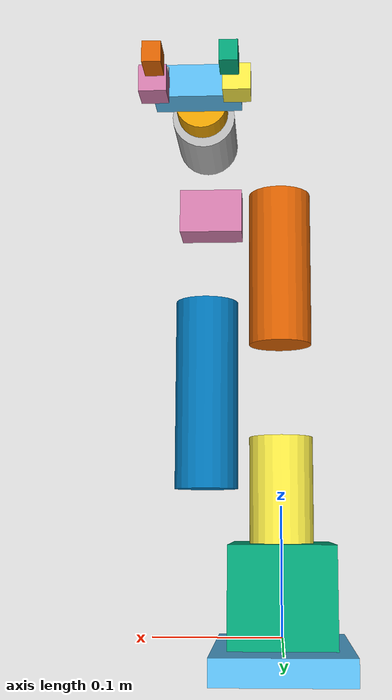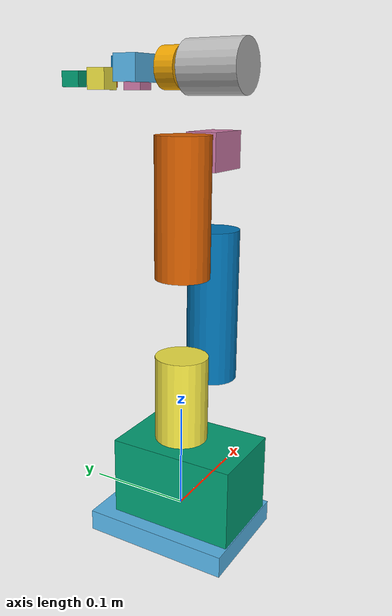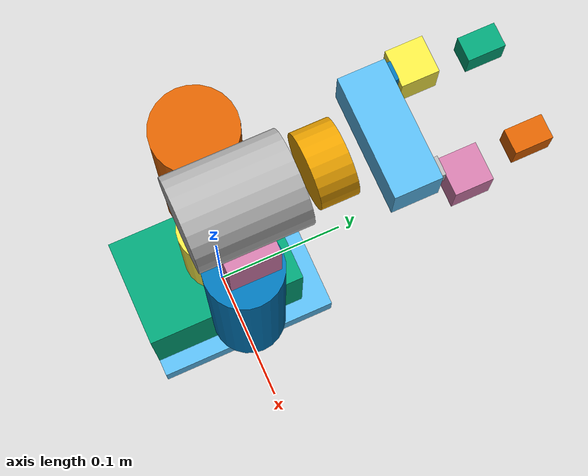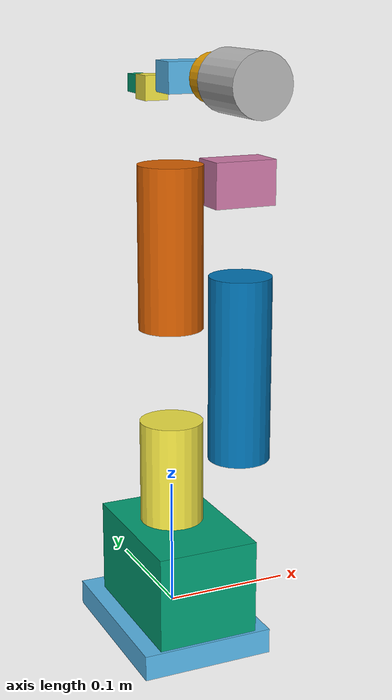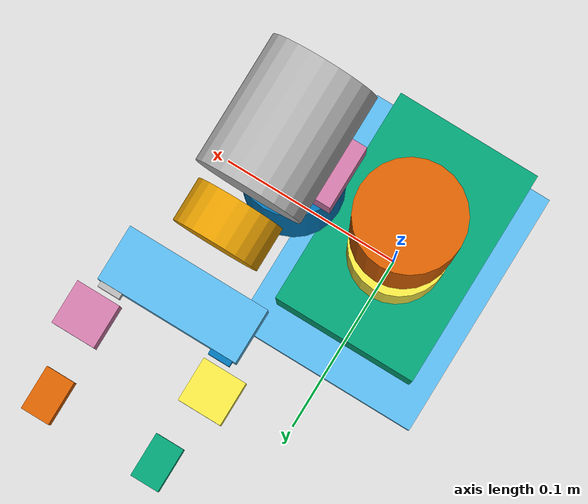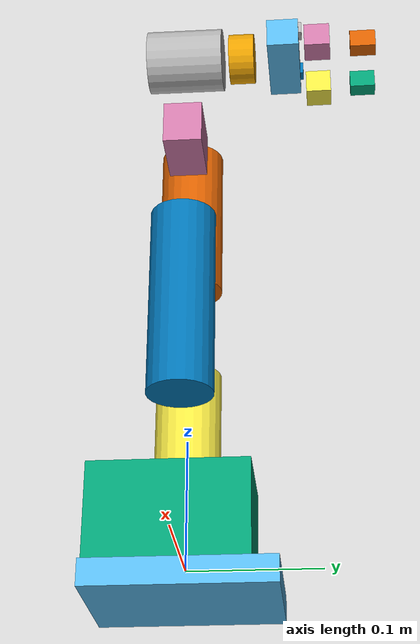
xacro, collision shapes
<?xml version="1.0"?>
<robot xmlns:xacro="http://www.ros.org/wiki/xacro" name="mycobot_280">

    <!-- THIS FILES IS THE FILE THAT BRINGS ALL THOSE COMPONENETS TOGETHER. -->
    <xacro:arg name="robot_name" default="mycobot_280"/>
    <xacro:arg name="add_world" default="true"/> <!-- This for adding a world link for our URDF-->
    <xacro:arg name="base_link" default="base_link"/> <!-- The name of the base link of the robotic arm-->
    <xacro:arg name="base_type" default="g_shape"/> <!-- The type of the base to use-->
    <xacro:arg name="flange_link" default="link6_flange"/> <!-- The name of the endeffector the end link of the arm-->
    <xacro:arg name="gripper_type" default="adaptive_gripper"/> <!-- This the name of the gripper we are using-->
    <xacro:arg name="prefix" default=""/> <!-- This going to be blank but if you deal with dual arm robot link in humaind robot you can name it because we need one for the left arm and one for the right arm-->
    <xacro:arg name="use_camera" default="false"/>
    <xacro:arg name="use_gazebo" default="false"/>
    <xacro:arg name="use_gripper" default="true"/> <!-- Here you can remove the gripper if you don't want to use it in the simulation-->

    <xacro:if value="$(arg add_world)">
      <link name="world"/>
      <joint name="$(arg prefix)virtual_joint" type="fixed">
          <parent link="world"/>
          <child link="$(arg prefix)$(arg base_link)"/>
          <origin xyz="0 0 0" rpy="0 0 0"/>
      </joint>
    </xacro:if>

    <!-- Here we handle the base the g_shape the gray platform to which we conect our robot to. We need to include it right here. But if you don't want this g_shape base so you will not need to include it. -->
    <xacro:property name="current_base" value="$(arg base_type)"/>
    <xacro:if value="${current_base == 'g_shape'}">
        <xacro:include filename="$(find mycobot_description)/urdf/mech/g_shape_base_v2_0.urdf.xacro"/>
        <xacro:g_shape_base
            base_link="$(arg base_link)"
            prefix="$(arg prefix)"/>
    </xacro:if>

    <xacro:include filename="$(find mycobot_description)/urdf/mech/mycobot_280_arm.urdf.xacro"/>
    <xacro:mycobot_280_arm
      base_link="$(arg base_link)"
      flange_link="$(arg flange_link)"
      prefix="$(arg prefix)">
      <origin xyz="0 0 0" rpy="0 0 0"/>
    </xacro:mycobot_280_arm>

    <!-- This is the gripper we added it here becaue we are using a gripper-->
    <xacro:if value="$(arg use_gripper)">
        <xacro:property name="current_gripper" value="$(arg gripper_type)"/>
        <xacro:if value="${current_gripper == 'adaptive_gripper'}">
            <xacro:include filename="$(find mycobot_description)/urdf/mech/adaptive_gripper.urdf.xacro"/>
            <xacro:adaptive_gripper
                parent="$(arg flange_link)"
                prefix="$(arg prefix)">
                <origin xyz="0 0 0.034" rpy="1.579 0 0"/>
            </xacro:adaptive_gripper>
        </xacro:if>
    </xacro:if>

</robot>

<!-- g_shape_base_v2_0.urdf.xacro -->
<robot xmlns:xacro="http://wiki.ros.org/xacro">

    <!-- THIS FILE IS JUST DESCRBING A STATIC BASE PLACE -->

    <!-- This file define a single macro called g_shape_base and this takes 2 parameters the base_link and a prefix for unique naming-->
    <xacro:macro name="g_shape_base" params="base_link prefix">
       <!-- In this macro we define a single link with standard URDF components. The inertial, visual and collision-->
        <link name="${prefix}${base_link}">

            <inertial>
                <origin xyz="0 0 0.0" rpy="0 0 0"/> <!-- the origin the position XYZ and the orientation roll pitch and yaw-->
                <mass value="0.33"/> <!-- The mass of the link in kilograms-->
                <inertia
                    ixx="0.000784" ixy="0.0" ixz="0.0"
                    iyy="0.000867" iyz="0.0"
                    izz="0.001598"/>
            </inertial> <!-- The inertia describe how the mass is distributed. it impact how the link resists rotational motion-->

            <visual> <!-- A visula componnet define the gripper base how should it look like.-->
                <geometry>
                    <mesh filename="file://$(find mycobot_description)/meshes/g_shape_base_v2_0/visual/base_link.dae"/>
                </geometry>
                <origin xyz="0.0 0 -0.03" rpy="0 0 ${pi/2}"/>
            </visual>

            <collision> <!-- Define the geometry that is used to detected if the particular link collides with an object or another part of the robotic arm in gazebo environment-->
                <geometry> <!-- we define it as a baic box shape length,width and height and it's in meters -->
                    <box size="0.105 0.14 0.02"/>
                </geometry>
                <origin xyz="0.0 0.0 -0.015" rpy="0 0 0"/> <!-- Here the origin which it aids in how we position that collision geometry within the link. -->
            </collision>
        </link>

        <!-- This gazebo section to define how the base appears in simulation.-->
        <gazebo reference="${prefix}${base_link}">
            <visual>
                <material> <!-- And this number define the color and it's gray -->
                    <ambient>0.5 0.5 0.5 1</ambient>
                    <diffuse>0.5 0.5 0.5 1</diffuse>
                    <specular>0.5 0.5 0.5 1</specular>
                </material>
            </visual>
        </gazebo>
    </xacro:macro>

</robot>

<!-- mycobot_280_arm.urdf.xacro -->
<robot xmlns:xacro="http://www.ros.org/wiki/xacro">

  <xacro:property name="joint_effort" value="56.0"/> <!-- This is the maximum force the joint can exert which is the maxmum torque the joint can apply-->
  <xacro:property name="joint_velocity" value="2.792527"/> <!-- This is the maximum joint velocity in raians per second-->
  <xacro:property name="joint_damping" value="0.0"/> <!-- Joint dampping coefficient -->
  <xacro:property name="joint_friction" value="0.0"/> <!-- Joint friction coefficient-->

  <!--here we got the masses for each links of our robotic arm  -->
  <xacro:property name="link1_mass" value="0.12"/>
  <xacro:property name="link2_mass" value="0.19"/>
  <xacro:property name="link3_mass" value="0.16"/>
  <xacro:property name="link4_mass" value="0.124"/>
  <xacro:property name="link5_mass" value="0.11"/>
  <xacro:property name="link6_mass" value="0.0739"/>
  <xacro:property name="flange_mass" value="0.035"/> <!-- This the last peiese the one that conected to the last link and this one is the one that conect the robotic arm with the gripper-->

  <!-- A macro for the link_inertial and it's a plate for defining the inertial properties of links and we put it here in a macro so we don't repeat this block right here for every single link-->
  <!-- The purpose of Shakro is to make sure that your URDF files stay nice and maintainable-->
  <xacro:macro name="link_inertial" params="mass ixx iyy izz">
    <inertial>
      <origin xyz="0 0 0.0" rpy="0 0 0"/>
      <mass value="${mass}"/>
      <inertia
        ixx="${ixx}" ixy="0.0" ixz="0.0"
        iyy="${iyy}" iyz="0.0"
        izz="${izz}"/>
    </inertial>
  </xacro:macro>
  <!-- This xacro macro handle the visual properties. Specifically how will each link appear in gazebo simulation.-->
  <xacro:macro name="material_visual" params="ref_link ambient diffuse specular">
    <gazebo reference="${ref_link}">
      <visual>
        <material>
          <ambient>${ambient}</ambient>
          <diffuse>${diffuse}</diffuse>
          <specular>${specular}</specular>
        </material>
      </visual>
    </gazebo>
  </xacro:macro>

  <!-- This xacro macro is the main robotic arm definition and this macros is called my_cobot_280_arm and it accepts these parameters the base_link, flange_link, prefix and origin -->
  <xacro:macro name="mycobot_280_arm" params="base_link flange_link prefix *origin">

    <!-- So for each link form link1 through link6 plus the flang -->
    <link name="${prefix}link1"> <!-- We define the link name -->
      <xacro:link_inertial mass="${link1_mass}" ixx="0.000148" iyy="0.000148" izz="0.000096"/> <!-- The physical properties using link inertial macros-->
      <visual> <!-- The visula properties and we tag the appropriate mesh file to define how this will actually look-->
        <geometry>
          <mesh filename="file://$(find mycobot_description)/meshes/mycobot_280/visual/link1.dae"/>
        </geometry>
        <origin xyz="0.0 0 0" rpy="0 0 ${-pi/2}"/>
      </visual>
      <collision>
        <geometry> <!-- And then simplify box geometry length,width and height for actual collision detection-->
          <box size="0.08 0.12 0.075"/>
        </geometry>
        <origin xyz="0.0 -0.01 0.034" rpy="0 0 0"/>
      </collision>
    </link>

    <link name="${prefix}link2">
      <xacro:link_inertial mass="${link2_mass}" ixx="0.000148" iyy="0.000148" izz="0.000096"/>
      <visual>
        <geometry>
          <mesh filename="file://$(find mycobot_description)/meshes/mycobot_280/visual/link2.dae"/>
        </geometry>
        <origin xyz="0.0 0 -0.06096" rpy="0 0 ${-pi/2}"/>
      </visual>
      <collision>
        <geometry>
          <cylinder radius="0.025" length="0.085"/>
        </geometry>
        <origin xyz="0.0 0 -0.02" rpy="0 0 ${-pi/2}"/>
      </collision>
    </link>

    <link name="${prefix}link3">
      <xacro:link_inertial mass="${link3_mass}" ixx="0.000148" iyy="0.000148" izz="0.000096"/>
      <visual>
        <geometry>
          <mesh filename="file://$(find mycobot_description)/meshes/mycobot_280/visual/link3.dae"/>
        </geometry>
        <origin xyz="0.0 0 0.03256" rpy="0 ${-pi/2} 0"/>
      </visual>
      <collision>
        <geometry>
          <cylinder radius="0.025" length="0.15"/>
        </geometry>
        <origin xyz="-0.058 0 0.059" rpy="0 ${-pi/2} 0"/>
      </collision>
    </link>

    <link name="${prefix}link4">
      <xacro:link_inertial mass="${link4_mass}" ixx="0.000103" iyy="0.000103" izz="0.000096"/>
      <visual>
        <geometry>
          <mesh filename="file://$(find mycobot_description)/meshes/mycobot_280/visual/link4.dae"/>
        </geometry>
        <origin xyz="0.0 0 0.03056" rpy="0 ${-pi/2} 0"/>
      </visual>
      <collision>
        <geometry>
          <cylinder radius="0.025" length="0.125"/>
        </geometry>
        <origin xyz="-0.05 0 0.0" rpy="0 ${-pi/2} 0"/>
      </collision>
    </link>

    <link name="${prefix}link5">
      <xacro:link_inertial mass="${link5_mass}" ixx="0.000103" iyy="0.000103" izz="0.000096"/>
      <visual>
        <geometry>
          <mesh filename="file://$(find mycobot_description)/meshes/mycobot_280/visual/link5.dae"/>
        </geometry>
        <origin xyz="0.0 0 -0.03356" rpy="${-pi/2} 0 0"/>
      </visual>
      <collision>
        <geometry>
          <box size="0.03 0.035 0.05"/>
        </geometry>
        <origin xyz="0.0 0 -0.005" rpy="0 0.0 0"/>
      </collision>
    </link>

    <link name="${prefix}link6">
      <xacro:link_inertial mass="${link6_mass}" ixx="0.00006649" iyy="0.00006649" izz="0.000096"/>
      <visual>
        <geometry>
          <mesh filename="file://$(find mycobot_description)/meshes/mycobot_280/visual/link6.dae"/>
        </geometry>
        <origin xyz="0 0.00 -0.038" rpy="0 0 0"/>
      </visual>
      <collision>
        <geometry>
          <cylinder radius="0.025" length="0.06"/>
        </geometry>
        <origin xyz="0 0.00 0.0" rpy="${-pi/2} 0 0"/>
      </collision>
    </link>

    <link name="${prefix}${flange_link}">
      <xacro:link_inertial mass="${flange_mass}" ixx="0.0000149" iyy="0.0000149" izz="0.0000196"/>
      <visual>
        <geometry>
          <mesh filename="file://$(find mycobot_description)/meshes/mycobot_280/visual/link7.dae"/>
        </geometry>
        <origin xyz="0.0 0 -0.012" rpy="0 0 0"/>
      </visual>
      <collision>
        <geometry>
          <cylinder radius="0.02" length="0.02"/>
        </geometry>
        <origin xyz="0 0.00 0.0" rpy="0 0 0"/>
      </collision>
    </link>

    <!-- Now we get to the joints and joint conect all those link together-->
    <joint name="${prefix}${base_link}_to_${prefix}link1" type="fixed"> <!-- This is the name of the joint and it tell us what this joint conect and the type of the joint is fixed because there's no motion in the base linke-->
      <parent link="${prefix}${base_link}"/> <!-- Is the link that have the joint we want to conect it with other link-->
      <child link="${prefix}link1"/> <!-- Is the link we want it to conect it with the link that have the joint -->
      <xacro:insert_block name="origin"/>
    </joint>

    <joint name="${prefix}link1_to_${prefix}link2" type="revolute"> <!-- But in this joint the type is revolute because it rotate so it's not fixed-->
      <axis xyz="0 0 1"/> <!-- This define the axis of rotation the position of the rotation the joint will do in which axises and here mean we have rotation around the Z axis of the parent coordinate frame -->
      <limit effort="${joint_effort}" lower="-2.879793" upper="2.879793" velocity="${joint_velocity}"/>
      <parent link="${prefix}link1"/>
      <child link="${prefix}link2"/>
      <origin xyz="0 0 0.13156" rpy="0 0 ${pi/2}"/> <!-- This is the origin the position and orientation of the joint relative to the parent link-->
      <dynamics damping="${joint_damping}" friction="${joint_friction}"/> <!-- Here we have damping and damping is the parameter measured in Newton meters per radian per second. And this determines how much the joint moving at a certain speed -->
    </joint>

    <joint name="${prefix}link2_to_${prefix}link3" type="revolute">
      <axis xyz="0 0 1"/>
      <limit effort="${joint_effort}" lower="-2.879793" upper="2.879793" velocity="${joint_velocity}"/>
      <parent link="${prefix}link2"/>
      <child link="${prefix}link3"/>
      <origin xyz="0 0 -0.001" rpy="0 ${pi/2} ${-pi/2}"/>
      <dynamics damping="${joint_damping}" friction="${joint_friction}"/>
    </joint>

    <joint name="${prefix}link3_to_${prefix}link4" type="revolute">
      <axis xyz="0 0 1"/>
      <limit effort="${joint_effort}" lower="-2.879793" upper="2.879793" velocity="${joint_velocity}"/>
      <parent link="${prefix}link3"/>
      <child link="${prefix}link4"/>
      <origin xyz="-0.1104 0 0" rpy="0 0 0"/>
      <dynamics damping="${joint_damping}" friction="${joint_friction}"/>
    </joint>

    <joint name="${prefix}link4_to_${prefix}link5" type="revolute">
      <axis xyz="0 0 1"/>
      <limit effort="${joint_effort}" lower="-2.879793" upper="2.879793" velocity="${joint_velocity}"/>
      <parent link="${prefix}link4"/>
      <child link="${prefix}link5"/>
      <origin xyz="-0.096 0 0.06062" rpy="0 0 ${-pi/2}"/>
      <dynamics damping="${joint_damping}" friction="${joint_friction}"/>
    </joint>

    <joint name="${prefix}link5_to_${prefix}link6" type="revolute">
      <axis xyz="0 0 1"/>
      <limit effort="${joint_effort}" lower="-2.879793" upper="2.879793" velocity="${joint_velocity}"/>
      <parent link="${prefix}link5"/>
      <child link="${prefix}link6"/>
      <origin xyz="0 -0.07318 0" rpy="${pi/2} ${-pi/2} 0"/>
      <dynamics damping="${joint_damping}" friction="${joint_friction}"/>
    </joint>

    <joint name="${prefix}link6_to_${prefix}${flange_link}" type="revolute">
      <axis xyz="0 0 1"/>
      <limit effort="${joint_effort}" lower="-3.05" upper="3.05" velocity="${joint_velocity}"/>
      <parent link="${prefix}link6"/>
      <child link="${prefix}${flange_link}"/>
      <origin xyz="0 0.0456 0" rpy="${-pi/2} 0 0"/>
      <dynamics damping="${joint_damping}" friction="${joint_friction}"/>
    </joint>

    <!-- Here we set the visual properties for each link and how it should look in Gazebo. 0.5 stand for color gray and 1 stand for color white.-->
    <xacro:material_visual ref_link="${prefix}link1" ambient="0.5 0.5 0.5 1" diffuse="0.5 0.5 0.5 1" specular="0.5 0.5 0.5 1"/>
    <xacro:material_visual ref_link="${prefix}link2" ambient="1 1 1 1" diffuse="1 1 1 1" specular="1 1 1 1"/>
    <xacro:material_visual ref_link="${prefix}link3" ambient="1 1 1 1" diffuse="1 1 1 1" specular="1 1 1 1"/>
    <xacro:material_visual ref_link="${prefix}link4" ambient="1 1 1 1" diffuse="1 1 1 1" specular="1 1 1 1"/>
    <xacro:material_visual ref_link="${prefix}link5" ambient="1 1 1 1" diffuse="1 1 1 1" specular="1 1 1 1"/>
    <xacro:material_visual ref_link="${prefix}link6" ambient="1 1 1 1" diffuse="1 1 1 1" specular="1 1 1 1"/>
    <xacro:material_visual ref_link="${prefix}${flange_link}" ambient="0.5 0.5 0.5 1" diffuse="0.5 0.5 0.5 1" specular="0.5 0.5 0.5 1"/>

  </xacro:macro>
</robot>

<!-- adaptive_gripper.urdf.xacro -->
<!-- XML declaration -->
<robot xmlns:xacro="http://www.ros.org/wiki/xacro"> <!-- Robot tag and this two line in any stander URDF files
   and the Xacro here tells us we are using the xacro macro for more maintainable robot descriptions-->
  <!--What xacro do is reduce the amoount of code you need to write in each URDF file. It's like a macro
  consolidating all the code into really tiny modular reusable chunks.-->

  <!--NOTE:::-->
  <!-- THIS OVER ALL STRUCTURE, ALL THE URDF FILES DOES IS IT CREATES A GRIPPER_BASE AND A GRIPPER_CONTROLLER WITH SIX SYNCHRONIZED MOVING PARTS IT'S GOT 3 ON EACH SIDE -->
  <!-- And out gripper movment is controlled by our single main joint the gripper controller-->

  <!--These are the physical limitation that we're putting on our grippers movement. -->
  <xacro:property name="joint_effort" value="56.0"/> <!-- How much force our joints can exert which is the maxmum torque the joint can apply-->
  <xacro:property name="joint_velocity" value="2.792527"/> <!-- How fast the joints will move and we use radians per second-->
  <xacro:property name="joint_damping" value="0.0"/>
  <xacro:property name="joint_friction" value="0.0"/>

  <!-- Here we define some mass and inertial properties and these values are very important for accurate physics simulation -->
  <xacro:property name="gripper_link_mass" value="0.007"/> <!-- How much mass using kilograms -->
  <xacro:property name="gripper_link_ixx" value="1e-6"/>
  <xacro:property name="gripper_link_iyy" value="1e-6"/>
  <xacro:property name="gripper_link_izz" value="1e-6"/>

  <!-- This is a reusable template for the inertial properties that we use multiple times throughout the robot -->
  <xacro:macro name="gripper_link_inertial">
    <inertial>
      <origin xyz="0 0 0.0" rpy="0 0 0"/>
      <mass value="${gripper_link_mass}"/>
      <inertia
        ixx="${gripper_link_ixx}" ixy="0.0" ixz="0.0"
        iyy="${gripper_link_iyy}" iyz="0.0"
        izz="${gripper_link_izz}"/>
    </inertial>
  </xacro:macro>

  <!-- Here we have the main gripper definition and this macro take 3 parameters parent,prefix and origin-->
  <!-- Parent is what the gripper attaches to on your robot-->
  <!-- origin is where the girpper actually mounts-->
  <xacro:macro name="adaptive_gripper" params="parent prefix *origin">

    <!-- Here we start with the links and as we know any robot is a collection of links and joints and links are the hard rigig pieces and joints are the movable pieces -->
    <!-- And the first link we define here is the gripper base-->
    <!-- And as we can see an link has three highlevel parts inertial, Visual and Collision-->
    <link name="${prefix}gripper_base">
      <!-- First bluck is inertial and it defines the physical properties of the gripper base-->
      <inertial>
        <origin xyz="0 0 0.0" rpy="0 0 0"/> <!-- Like origin and where it's conect-->
        <mass value="0.07"/> <!-- And its mass (kilograms)-->
        <inertia
          ixx="0.000010725" ixy="0.0" ixz="0.0"
          iyy="0.000014392" iyz="0.0"
          izz="0.000018517"/>
      </inertial> <!-- And it's inertia-->
      <!-- The second bluck is visual and it defines how the actual grippper looks   -->
      <visual>
        <geometry>
          <mesh filename="file://$(find mycobot_description)/meshes/adaptive_gripper/visual/gripper_base.dae"/>
          <!--  This mesh file the dae file create the realistic appearance for the robot-->
        </geometry>
        <origin xyz="0.0 0.0 -0.012" rpy="0 0 0"/>
      </visual>
      <!--The 3rd bluck is the collision and we're using just a simplified shape for the collision, a box. we're modeling the gripper base as an actual box-->
      <!-- Why we do that? because it's much simpler for physics engines to be able to handle a box geometry than a complicated mesh geometry. it's much more lightweight on different physics engines like Gazebo-->
      <collision>
        <geometry>
          <!-- With the length, width and the height of the box-->
          <box size="0.065 0.025 0.025"/>
          <!-- But collision uses simple geometic shapes for very efficient collision checking. -->
        </geometry>
        <origin xyz="0.0 0.0 0.0" rpy="0 0 0"/>
      </collision>
    </link>

    <!-- Here after our first link we see our first joint-->
    <!-- And this the joint that conect the parent which is the endeffector of the arm the last piece they often call it the Flange where the gripper actually conects to the robotic arm. -->
    <!-- And this parent conected to the gribber_base and it's fixed because we normally screw on the gripper base onto the robotic arm. -->
    <joint name="${prefix}${parent}_to_${prefix}gripper_base" type="fixed">
      <parent link="${prefix}${parent}"/>
      <child link="${prefix}gripper_base"/>
      <xacro:insert_block name="origin"/>
    </joint>

    <link name="${prefix}gripper_left1">
      <xacro:gripper_link_inertial/>
      <visual>
        <geometry>
          <mesh filename="file://$(find mycobot_description)/meshes/adaptive_gripper/visual/gripper_left1.dae"/>
        </geometry>
        <origin xyz="0.039 -0.0133 -0.012" rpy="0 0 0"/>
      </visual>
      <collision>
        <geometry>
          <box size="0.013 0.02 0.015"/>
        </geometry>
        <origin xyz="0.013 0.042 -0.010" rpy="0 0 0"/>
      </collision>
    </link>

    <link name="${prefix}gripper_left2">
      <xacro:gripper_link_inertial/>
      <visual>
        <geometry>
          <mesh filename="file://$(find mycobot_description)/meshes/adaptive_gripper/visual/gripper_left2.dae"/>
        </geometry>
        <origin xyz="0.005 -0.0195 -0.012" rpy="0 0 0"/>
      </visual>
      <collision>
        <geometry>
          <box size="0.02 0.02 0.02"/>
        </geometry>
        <origin xyz="-0.025 0.0 -0.010" rpy="0 0 0"/>
      </collision>
    </link>

    <link name="${prefix}gripper_left3">
      <xacro:gripper_link_inertial/>
      <visual>
        <geometry>
          <mesh filename="file://$(find mycobot_description)/meshes/adaptive_gripper/visual/gripper_left3.dae"/>
        </geometry>
        <origin xyz="0.012 0.0025 -0.012" rpy="0 0 0"/>
      </visual>
      <collision>
        <geometry>
          <box size="0.01 0.01 0.01"/>
        </geometry>
        <origin xyz="-0.014 0.005 0.005" rpy="0 0 0"/>
      </collision>
    </link>

    <link name="${prefix}gripper_right1">
      <xacro:gripper_link_inertial/>
      <visual>
        <geometry>
          <mesh filename="file://$(find mycobot_description)/meshes/adaptive_gripper/visual/gripper_right1.dae"/>
        </geometry>
        <origin xyz="-0.039 -0.0133 -0.012" rpy="0 0 0"/>
      </visual>
      <collision>
        <geometry>
          <box size="0.013 0.02 0.015"/>
        </geometry>
        <origin xyz="-0.013 0.042 -0.010" rpy="0 0 0"/>
      </collision>
    </link>

    <link name="${prefix}gripper_right2">
      <xacro:gripper_link_inertial/>
      <visual>
        <geometry>
          <mesh filename="file://$(find mycobot_description)/meshes/adaptive_gripper/visual/gripper_right2.dae"/>
        </geometry>
        <origin xyz="-0.005 -0.0195 -0.012" rpy="0 0 0"/>
      </visual>
      <collision>
        <geometry>
          <box size="0.02 0.02 0.02"/>
        </geometry>
        <origin xyz="0.025 0.0 -0.010" rpy="0 0 0"/>
      </collision>
    </link>

    <link name="${prefix}gripper_right3">
      <xacro:gripper_link_inertial/>
      <visual>
        <geometry>
          <mesh filename="file://$(find mycobot_description)/meshes/adaptive_gripper/visual/gripper_right3.dae"/>
        </geometry>
        <origin xyz="-0.012 0.0025 -0.012" rpy="0 0 0"/>
      </visual>
      <collision>
        <geometry>
          <box size="0.01 0.01 0.01"/>
        </geometry>
        <origin xyz="0.014 0.005 0.005" rpy="0 0 0"/>
      </collision>
    </link>

    <!-- This joint is the main controll point of the gripper basically it's the motor that mkae the gripper open and close or do it job-->
    <joint name="${prefix}gripper_controller" type="revolute">
      <axis xyz="0 0 1"/>
      <limit effort="${joint_effort}" lower="-0.7" upper="0.15" velocity="${joint_velocity}"/>
      <parent link="${prefix}gripper_base"/>
      <child link="${prefix}gripper_left3"/>
      <origin xyz="-0.012 0.005 0" rpy="0 0 0"/>
      <dynamics damping="${joint_damping}" friction="${joint_friction}"/>
    </joint>
    <!-- And all the other gripper joint are designed to mimic the gripper controller-->
    <joint name="${prefix}gripper_base_to_${prefix}gripper_left2" type="revolute">
      <axis xyz="0 0 1"/> <!-- This define which direction the joint will rotates-->
      <limit effort="${joint_effort}" lower="-0.8" upper="0.5" velocity="${joint_velocity}"/> <!-- This defines how far the joint can move in radians. And you got joint_velocity which define how fast it can move in radians per second. And all this was defined up in our parameters section-->
      <parent link="${prefix}gripper_base"/> <!-- This show what parent part is conected to-->
      <child link="${prefix}gripper_left2"/> <!-- This the child of the joint which is the part that conected to the parent-->
      <origin xyz="-0.005 0.027 0" rpy="0 0 0"/> <!-- This defines where the joint is located relative to its parent the gripper_base-->
      <mimic joint="${prefix}gripper_controller" multiplier="1.0" offset="0"/>
      <dynamics damping="${joint_damping}" friction="${joint_friction}"/>
      <!-- And this is the same structured for all the other joints-->
    </joint>

    <joint name="${prefix}gripper_left3_to_${prefix}gripper_left1" type="revolute">
      <axis xyz="0 0 1"/>
      <limit effort="${joint_effort}" lower="-0.5" upper="0.5" velocity="${joint_velocity}"/>
      <parent link="${prefix}gripper_left3"/>
      <child link="${prefix}gripper_left1"/>
      <origin xyz="-0.027 0.016 0" rpy="0 0 0"/>
      <mimic joint="${prefix}gripper_controller" multiplier="-1.0" offset="0"/> <!-- for this one if you move 5 radians on the gripper controller you will move -5 radians on the gripper base to gripper_left1 joint.  -->
      <dynamics damping="${joint_damping}" friction="${joint_friction}"/>
    </joint>

    <joint name="${prefix}gripper_base_to_${prefix}gripper_right3" type="revolute">
      <axis xyz="0 0 1"/>
      <limit effort="${joint_effort}" lower="-0.15" upper="0.7" velocity="${joint_velocity}"/>
      <parent link="${prefix}gripper_base"/>
      <child link="${prefix}gripper_right3"/>
      <origin xyz="0.012 0.005 0" rpy="0 0 0"/>
      <mimic joint="${prefix}gripper_controller" multiplier="-1.0" offset="0"/>
      <dynamics damping="${joint_damping}" friction="${joint_friction}"/>
    </joint>

    <joint name="${prefix}gripper_base_to_${prefix}gripper_right2" type="revolute">
      <axis xyz="0 0 1"/>
      <limit effort="${joint_effort}" lower="-0.5" upper="0.8" velocity="${joint_velocity}"/>
      <parent link="${prefix}gripper_base"/>
      <child link="${prefix}gripper_right2"/>
      <origin xyz="0.005 0.027 0" rpy="0 0 0"/>
      <mimic joint="${prefix}gripper_controller" multiplier="-1.0" offset="0"/>
      <dynamics damping="${joint_damping}" friction="${joint_friction}"/>
    </joint>

    <joint name="${prefix}gripper_right3_to_${prefix}gripper_right1" type="revolute">
      <axis xyz="0 0 1"/>
      <limit effort="${joint_effort}" lower="-0.5" upper="0.5" velocity="${joint_velocity}"/>
      <parent link="${prefix}gripper_right3"/>
      <child link="${prefix}gripper_right1"/>
      <origin xyz="0.027 0.016 0" rpy="0 0 0"/>
      <mimic joint="${prefix}gripper_controller" multiplier="1.0" offset="0"/>
      <dynamics damping="${joint_damping}" friction="${joint_friction}"/>
    </joint>

    <!-- This defines gazebo specific element. And gazebo our simulation engine  -->
    <gazebo reference="${prefix}gripper_base">
      <visual> <!-- We define here how the gripper should look and appear in Gazebo simulation-->
        <material> <!-- And this corresponds to a color for the gripper-->
          <ambient>1 1 1 1</ambient>
          <diffuse>1 1 1 1</diffuse>
          <specular>1 1 1 1</specular>
        </material>
      </visual>
    </gazebo>

  </xacro:macro>
</robot>
